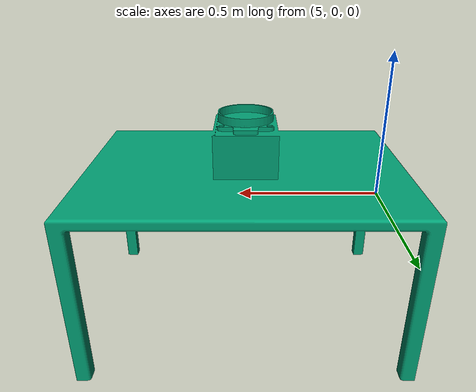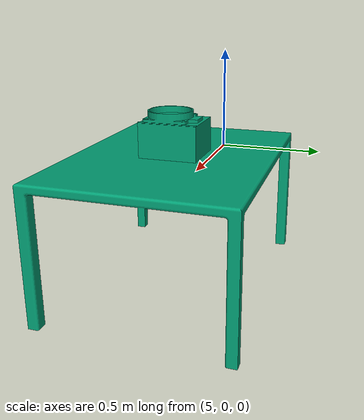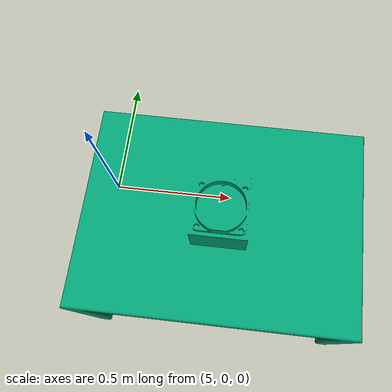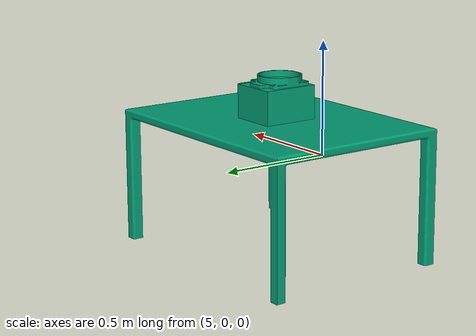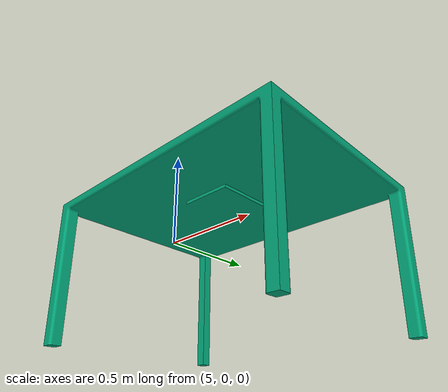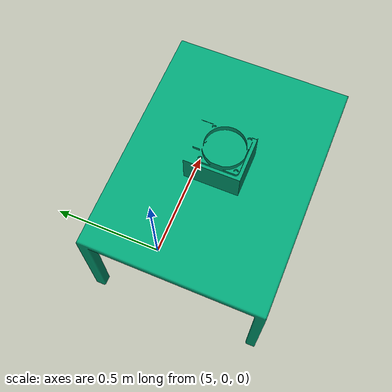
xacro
<?xml version="1.0" encoding="utf-8"?>
<robot name ="turn_table" xmlns:xacro="http://www.ros.org/wiki/xacro">
  <xacro:include filename="$(find turn_table_robot)/urdf/turn_table_test.urdf.xacro" />
  <link name="base_link" />
  <turn_table parent="base_link">
    <origin xyz="0 0 0" rpy="0 0 0"/>
  </turn_table>

</robot>

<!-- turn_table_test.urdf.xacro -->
<robot name="turn_table" xmlns:xacro="http://ros.org/wiki/xacro">
  <!-- Includes -->

  <xacro:macro name="turn_table" params="parent *origin  name:=camera  use_nominal_extrinsics:=false">
    <xacro:property name="M_PI" value="3.1415926535897931" />

    <!-- The following values are approximate, and the camera node
     publishing TF values with actual calibrated camera extrinsic values -->
    <xacro:property name="d415_cam_depth_to_infra1_offset" value="0.0"/>
    <xacro:property name="d415_cam_depth_to_infra2_offset" value="-0.055"/>
    <xacro:property name="d415_cam_depth_to_color_offset" value="0.015"/>

    <!-- The following values model the aluminum peripherial case for the
  	d415 camera, with the camera joint represented by the actual
  	peripherial camera tripod mount -->
    <xacro:property name="d415_cam_width" value="0.099"/>
    <xacro:property name="d415_cam_height" value="0.023"/>
    <xacro:property name="d415_cam_depth" value="0.02005"/>
    <xacro:property name="d415_cam_mount_from_center_offset" value="0.00987"/>

    <!-- The following offset is relative the the physical d415 camera peripherial
  	camera tripod mount -->
    <xacro:property name="d415_cam_depth_px" value="${d415_cam_mount_from_center_offset}"/>
    <xacro:property name="d415_cam_depth_py" value="0.020"/>
    <xacro:property name="d415_cam_depth_pz" value="${d415_cam_height/2}"/>

    <!-- camera body, with origin at bottom screw mount -->
    <joint name="${name}_joint" type="fixed">
      <xacro:insert_block name="origin" />
      <parent link="${parent}"/>
      <child link="${name}_bottom_screw_frame" />
    </joint>

    <link name="${name}_bottom_screw_frame"/>

    <joint name="${name}_link_joint" type="continues">
      <origin xyz="0 ${d415_cam_depth_py} ${d415_cam_depth_pz}" rpy="0 0 0"/>
      <parent link="${name}_bottom_screw_frame"/>
      <child link="${name}_link" />
    </joint>

    <link name="${name}_link">
      <visual>
      <origin xyz="0 0 0" rpy="0 0 0"/>
        <geometry>
	         <mesh filename="package://turn_table_robot/meshes/base_link.STL"/>
        </geometry>
        <material name="aluminum"/>
      </visual>
      <collision>
        <origin xyz="0 0 0" rpy="0 0 0"/>
        <geometry>
        <mesh
          filename="package://turn_table_robot/meshes/base_link.STL" />
      </geometry>
      </collision>
      <inertial>
        <!-- The following are not reliable values, and should not be used for modeling -->
        <origin xyz="5.47630436823313 0.00445137401296207 0.127274647707627" rpy="0 0 0" />
      <mass value="53" />
      <inertia
        ixx="4.69052174516768"
        ixy="-2.85464416367111E-06"
        ixz="6.14968020065979E-06"
        iyy="11.0842686073968"
        iyz="-1.23849027826522E-05"
        izz="7.82834235009259" />
      </inertial>
    </link>
    <!-- Use the nominal extrinsics between camera frames if the calibrated extrinsics aren't being published. e.g. running the device in simulation  -->

      <!-- camera left IR joints and links -->

      <!-- camera right IR joints and links -->

      <!-- camera color joints and links -->
  </xacro:macro>
</robot>
